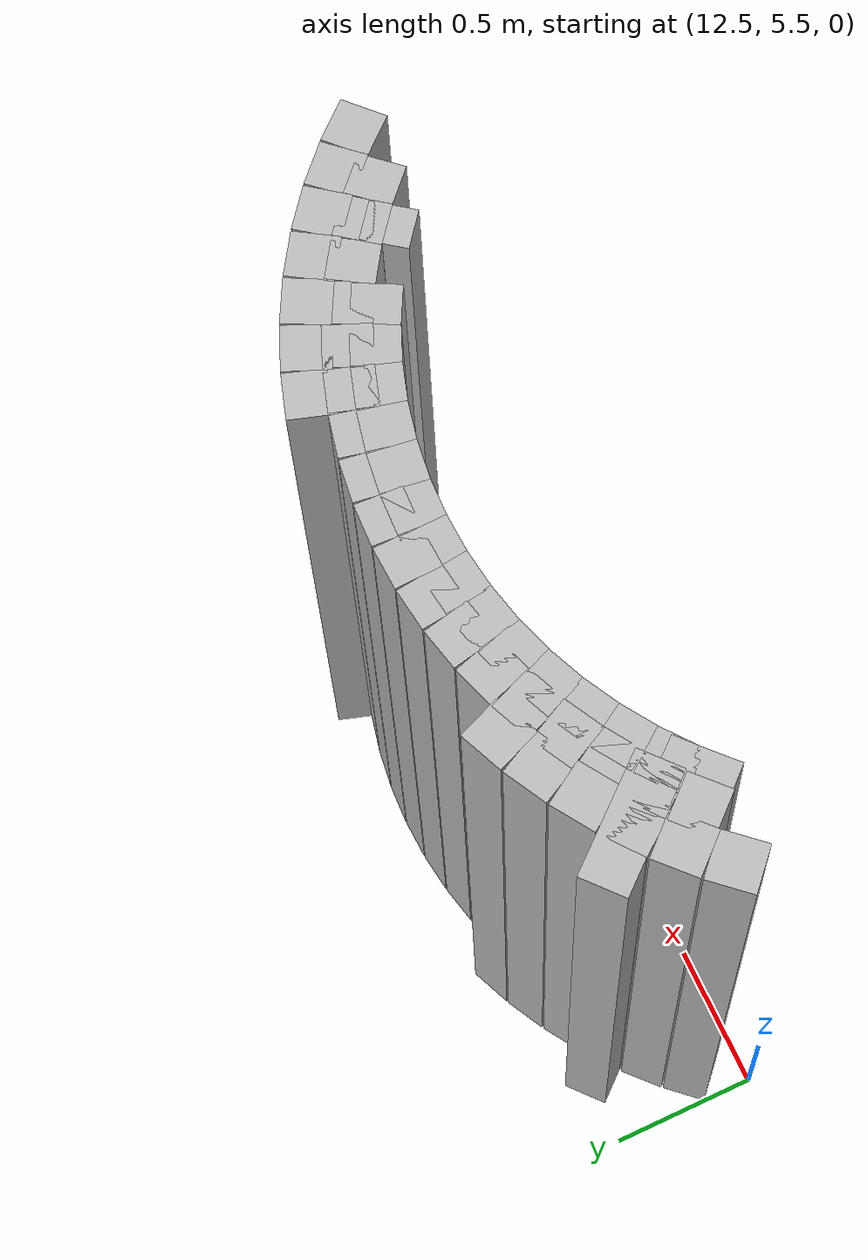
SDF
<sdf version="1.6">
 <model name="sps_1000">
  <static>1</static>
  <allow_auto_disable>0</allow_auto_disable>
  <link name="Wall2316">
   <collision name="collision"><geometry><box><size>0.399907 0.15 2.5</size></box></geometry></collision>
   <visual name="visual">
    <geometry><box><size>0.399907 0.15 2.5</size></box></geometry>
    <transparency>0.0</transparency>
   </visual>
   <pose>12.8293 5.8817 1.25 0 -0 2.28123</pose>
  </link>
  <link name="Wall7681">
   <collision name="collision"><geometry><box><size>0.399907 0.15 2.5</size></box></geometry></collision>
   <visual name="visual">
    <geometry><box><size>0.399907 0.15 2.5</size></box></geometry>
    <transparency>0.0</transparency>
   </visual>
   <pose>12.8293 5.8817 1.25 0 -0 2.28123</pose>
  </link>
  <link name="Wall9812">
   <collision name="collision"><geometry><box><size>0.130818 0.15 2.5</size></box></geometry></collision>
   <visual name="visual">
    <geometry><box><size>0.130818 0.15 2.5</size></box></geometry>
    <transparency>0.0</transparency>
   </visual>
   <pose>14.7736 5.71547 1.25 0 0 -0.654046</pose>
  </link>
  <link name="Wall9868">
   <collision name="collision"><geometry><box><size>0.130943 0.15 2.5</size></box></geometry></collision>
   <visual name="visual">
    <geometry><box><size>0.130943 0.15 2.5</size></box></geometry>
    <transparency>0.0</transparency>
   </visual>
   <pose>12.8487 5.63209 1.25 0 -0 0.740888</pose>
  </link>
  <link name="Wall9869">
   <collision name="collision"><geometry><box><size>0.130818 0.15 2.5</size></box></geometry></collision>
   <visual name="visual">
    <geometry><box><size>0.130818 0.15 2.5</size></box></geometry>
    <transparency>0.0</transparency>
   </visual>
   <pose>12.949 5.71608 1.25 0 -0 0.654046</pose>
  </link>
  <link name="Wall9870">
   <collision name="collision"><geometry><box><size>0.130783 0.15 2.5</size></box></geometry></collision>
   <visual name="visual">
    <geometry><box><size>0.130783 0.15 2.5</size></box></geometry>
    <transparency>0.0</transparency>
   </visual>
   <pose>13.0561 5.79097 1.25 0 -0 0.566514</pose>
  </link>
  <link name="Wall9871">
   <collision name="collision"><geometry><box><size>0.130981 0.15 2.5</size></box></geometry></collision>
   <visual name="visual">
    <geometry><box><size>0.130981 0.15 2.5</size></box></geometry>
    <transparency>0.0</transparency>
   </visual>
   <pose>13.1693 5.85628 1.25 0 -0 0.479486</pose>
  </link>
  <link name="Wall9872">
   <collision name="collision"><geometry><box><size>0.130724 0.15 2.5</size></box></geometry></collision>
   <visual name="visual">
    <geometry><box><size>0.130724 0.15 2.5</size></box></geometry>
    <transparency>0.0</transparency>
   </visual>
   <pose>13.2878 5.91148 1.25 0 -0 0.392385</pose>
  </link>
  <link name="Wall9873">
   <collision name="collision"><geometry><box><size>0.130896 0.15 2.5</size></box></geometry></collision>
   <visual name="visual">
    <geometry><box><size>0.130896 0.15 2.5</size></box></geometry>
    <transparency>0.0</transparency>
   </visual>
   <pose>13.4106 5.95619 1.25 0 -0 0.305972</pose>
  </link>
  <link name="Wall9874">
   <collision name="collision"><geometry><box><size>0.130921 0.15 2.5</size></box></geometry></collision>
   <visual name="visual">
    <geometry><box><size>0.130921 0.15 2.5</size></box></geometry>
    <transparency>0.0</transparency>
   </visual>
   <pose>13.5369 5.9901 1.25 0 -0 0.218517</pose>
  </link>
  <link name="Wall9875">
   <collision name="collision"><geometry><box><size>0.130934 0.15 2.5</size></box></geometry></collision>
   <visual name="visual">
    <geometry><box><size>0.130934 0.15 2.5</size></box></geometry>
    <transparency>0.0</transparency>
   </visual>
   <pose>13.6658 6.0128 1.25 0 -0 0.130426</pose>
  </link>
  <link name="Wall9876">
   <collision name="collision"><geometry><box><size>0.130916 0.15 2.5</size></box></geometry></collision>
   <visual name="visual">
    <geometry><box><size>0.130916 0.15 2.5</size></box></geometry>
    <transparency>0.0</transparency>
   </visual>
   <pose>13.7961 6.02409 1.25 0 -0 0.0424383</pose>
  </link>
  <link name="Wall9877">
   <collision name="collision"><geometry><box><size>0.130683 0.15 2.5</size></box></geometry></collision>
   <visual name="visual">
    <geometry><box><size>0.130683 0.15 2.5</size></box></geometry>
    <transparency>0.0</transparency>
   </visual>
   <pose>13.9267 6.02397 1.25 0 0 -0.0443841</pose>
  </link>
  <link name="Wall9878">
   <collision name="collision"><geometry><box><size>0.130926 0.15 2.5</size></box></geometry></collision>
   <visual name="visual">
    <geometry><box><size>0.130926 0.15 2.5</size></box></geometry>
    <transparency>0.0</transparency>
   </visual>
   <pose>14.0569 6.01259 1.25 0 0 -0.129964</pose>
  </link>
  <link name="Wall9879">
   <collision name="collision"><geometry><box><size>0.130921 0.15 2.5</size></box></geometry></collision>
   <visual name="visual">
    <geometry><box><size>0.130921 0.15 2.5</size></box></geometry>
    <transparency>0.0</transparency>
   </visual>
   <pose>14.1858 5.98991 1.25 0 0 -0.218517</pose>
  </link>
  <link name="Wall9880">
   <collision name="collision"><geometry><box><size>0.130896 0.15 2.5</size></box></geometry></collision>
   <visual name="visual">
    <geometry><box><size>0.130896 0.15 2.5</size></box></geometry>
    <transparency>0.0</transparency>
   </visual>
   <pose>14.3121 5.95601 1.25 0 0 -0.305972</pose>
  </link>
  <link name="Wall9881">
   <collision name="collision"><geometry><box><size>0.130794 0.15 2.5</size></box></geometry></collision>
   <visual name="visual">
    <geometry><box><size>0.130794 0.15 2.5</size></box></geometry>
    <transparency>0.0</transparency>
   </visual>
   <pose>14.4349 5.91121 1.25 0 0 -0.393678</pose>
  </link>
  <link name="Wall9882">
   <collision name="collision"><geometry><box><size>0.130765 0.15 2.5</size></box></geometry></collision>
   <visual name="visual">
    <geometry><box><size>0.130765 0.15 2.5</size></box></geometry>
    <transparency>0.0</transparency>
   </visual>
   <pose>14.5532 5.85591 1.25 0 0 -0.480348</pose>
  </link>
  <link name="Wall15295">
   <collision name="collision"><geometry><box><size>0.137937 0.15 2.5</size></box></geometry></collision>
   <visual name="visual">
    <geometry><box><size>0.137937 0.15 2.5</size></box></geometry>
    <transparency>0.0</transparency>
   </visual>
   <pose>14.8223 5.7791 1.25 0 0 -0.655183</pose>
  </link>
  <link name="Wall15296">
   <collision name="collision"><geometry><box><size>0.13789 0.15 2.5</size></box></geometry></collision>
   <visual name="visual">
    <geometry><box><size>0.13789 0.15 2.5</size></box></geometry>
    <transparency>0.0</transparency>
   </visual>
   <pose>14.9278 5.69047 1.25 0 0 -0.742192</pose>
  </link>
  <link name="Wall15351">
   <collision name="collision"><geometry><box><size>0.137902 0.15 2.5</size></box></geometry></collision>
   <visual name="visual">
    <geometry><box><size>0.137902 0.15 2.5</size></box></geometry>
    <transparency>0.0</transparency>
   </visual>
   <pose>12.7948 5.69118 1.25 0 -0 0.740316</pose>
  </link>
  <link name="Wall15352">
   <collision name="collision"><geometry><box><size>0.137899 0.15 2.5</size></box></geometry></collision>
   <visual name="visual">
    <geometry><box><size>0.137899 0.15 2.5</size></box></geometry>
    <transparency>0.0</transparency>
   </visual>
   <pose>12.9004 5.77968 1.25 0 -0 0.654832</pose>
  </link>
  <link name="Wall15353">
   <collision name="collision"><geometry><box><size>0.137791 0.15 2.5</size></box></geometry></collision>
   <visual name="visual">
    <geometry><box><size>0.137791 0.15 2.5</size></box></geometry>
    <transparency>0.0</transparency>
   </visual>
   <pose>13.0131 5.85869 1.25 0 -0 0.567239</pose>
  </link>
  <link name="Wall15354">
   <collision name="collision"><geometry><box><size>0.137753 0.15 2.5</size></box></geometry></collision>
   <visual name="visual">
    <geometry><box><size>0.137753 0.15 2.5</size></box></geometry>
    <transparency>0.0</transparency>
   </visual>
   <pose>13.1323 5.9275 1.25 0 -0 0.479897</pose>
  </link>
  <link name="Wall15355">
   <collision name="collision"><geometry><box><size>0.137874 0.15 2.5</size></box></geometry></collision>
   <visual name="visual">
    <geometry><box><size>0.137874 0.15 2.5</size></box></geometry>
    <transparency>0.0</transparency>
   </visual>
   <pose>13.2572 5.98561 1.25 0 -0 0.391522</pose>
  </link>
  <link name="Wall15356">
   <collision name="collision"><geometry><box><size>0.138 0.15 2.5</size></box></geometry></collision>
   <visual name="visual">
    <geometry><box><size>0.138 0.15 2.5</size></box></geometry>
    <transparency>0.0</transparency>
   </visual>
   <pose>13.3867 6.0327 1.25 0 -0 0.305945</pose>
  </link>
  <link name="Wall15357">
   <collision name="collision"><geometry><box><size>0.137839 0.15 2.5</size></box></geometry></collision>
   <visual name="visual">
    <geometry><box><size>0.137839 0.15 2.5</size></box></geometry>
    <transparency>0.0</transparency>
   </visual>
   <pose>13.5198 6.06837 1.25 0 -0 0.217804</pose>
  </link>
  <link name="Wall15358">
   <collision name="collision"><geometry><box><size>0.137754 0.15 2.5</size></box></geometry></collision>
   <visual name="visual">
    <geometry><box><size>0.137754 0.15 2.5</size></box></geometry>
    <transparency>0.0</transparency>
   </visual>
   <pose>13.6554 6.09218 1.25 0 -0 0.129741</pose>
  </link>
  <link name="Wall15359">
   <collision name="collision"><geometry><box><size>0.137947 0.15 2.5</size></box></geometry></collision>
   <visual name="visual">
    <geometry><box><size>0.137947 0.15 2.5</size></box></geometry>
    <transparency>0.0</transparency>
   </visual>
   <pose>13.7926 6.10408 1.25 0 -0 0.043374</pose>
  </link>
  <link name="Wall15360">
   <collision name="collision"><geometry><box><size>0.137886 0.15 2.5</size></box></geometry></collision>
   <visual name="visual">
    <geometry><box><size>0.137886 0.15 2.5</size></box></geometry>
    <transparency>0.0</transparency>
   </visual>
   <pose>13.9304 6.10408 1.25 0 0 -0.0433932</pose>
  </link>
  <link name="Wall15361">
   <collision name="collision"><geometry><box><size>0.137778 0.15 2.5</size></box></geometry></collision>
   <visual name="visual">
    <geometry><box><size>0.137778 0.15 2.5</size></box></geometry>
    <transparency>0.0</transparency>
   </visual>
   <pose>14.0675 6.09209 1.25 0 0 -0.131059</pose>
  </link>
  <link name="Wall15362">
   <collision name="collision"><geometry><box><size>0.137938 0.15 2.5</size></box></geometry></collision>
   <visual name="visual">
    <geometry><box><size>0.137938 0.15 2.5</size></box></geometry>
    <transparency>0.0</transparency>
   </visual>
   <pose>14.2031 6.0681 1.25 0 0 -0.219005</pose>
  </link>
  <link name="Wall15363">
   <collision name="collision"><geometry><box><size>0.137789 0.15 2.5</size></box></geometry></collision>
   <visual name="visual">
    <geometry><box><size>0.137789 0.15 2.5</size></box></geometry>
    <transparency>0.0</transparency>
   </visual>
   <pose>14.3362 6.03239 1.25 0 0 -0.305501</pose>
  </link>
  <link name="Wall15364">
   <collision name="collision"><geometry><box><size>0.137888 0.15 2.5</size></box></geometry></collision>
   <visual name="visual">
    <geometry><box><size>0.137888 0.15 2.5</size></box></geometry>
    <transparency>0.0</transparency>
   </visual>
   <pose>14.4656 5.98527 1.25 0 0 -0.392918</pose>
  </link>
  <link name="Wall15365">
   <collision name="collision"><geometry><box><size>0.137753 0.15 2.5</size></box></geometry></collision>
   <visual name="visual">
    <geometry><box><size>0.137753 0.15 2.5</size></box></geometry>
    <transparency>0.0</transparency>
   </visual>
   <pose>14.5904 5.92708 1.25 0 0 -0.479897</pose>
  </link>
  <link name="Wall15366">
   <collision name="collision"><geometry><box><size>0.137856 0.15 2.5</size></box></geometry></collision>
   <visual name="visual">
    <geometry><box><size>0.137856 0.15 2.5</size></box></geometry>
    <transparency>0.0</transparency>
   </visual>
   <pose>14.7096 5.8582 1.25 0 0 -0.567986</pose>
  </link>
  <link name="Wall21898">
   <collision name="collision"><geometry><box><size>0.148189 0.15 2.5</size></box></geometry></collision>
   <visual name="visual">
    <geometry><box><size>0.148189 0.15 2.5</size></box></geometry>
    <transparency>0.0</transparency>
   </visual>
   <pose>14.8954 5.87419 1.25 0 0 -0.653963</pose>
  </link>
  <link name="Wall21899">
   <collision name="collision"><geometry><box><size>0.148336 0.15 2.5</size></box></geometry></collision>
   <visual name="visual">
    <geometry><box><size>0.148336 0.15 2.5</size></box></geometry>
    <transparency>0.0</transparency>
   </visual>
   <pose>15.0088 5.77891 1.25 0 0 -0.743489</pose>
  </link>
  <link name="Wall21900">
   <collision name="collision"><geometry><box><size>0.148392 0.15 2.5</size></box></geometry></collision>
   <visual name="visual">
    <geometry><box><size>0.148392 0.15 2.5</size></box></geometry>
    <transparency>0.0</transparency>
   </visual>
   <pose>15.1135 5.67399 1.25 0 0 -0.829329</pose>
  </link>
  <link name="Wall21953">
   <collision name="collision"><geometry><box><size>0.148392 0.15 2.5</size></box></geometry></collision>
   <visual name="visual">
    <geometry><box><size>0.148392 0.15 2.5</size></box></geometry>
    <transparency>0.0</transparency>
   </visual>
   <pose>12.609 5.67479 1.25 0 -0 0.829329</pose>
  </link>
  <link name="Wall21954">
   <collision name="collision"><geometry><box><size>0.148306 0.15 2.5</size></box></geometry></collision>
   <visual name="visual">
    <geometry><box><size>0.148306 0.15 2.5</size></box></geometry>
    <transparency>0.0</transparency>
   </visual>
   <pose>12.7138 5.77959 1.25 0 -0 0.741442</pose>
  </link>
  <link name="Wall21955">
   <collision name="collision"><geometry><box><size>0.148372 0.15 2.5</size></box></geometry></collision>
   <visual name="visual">
    <geometry><box><size>0.148372 0.15 2.5</size></box></geometry>
    <transparency>0.0</transparency>
   </visual>
   <pose>12.8274 5.87477 1.25 0 -0 0.653539</pose>
  </link>
  <link name="Wall21956">
   <collision name="collision"><geometry><box><size>0.148188 0.15 2.5</size></box></geometry></collision>
   <visual name="visual">
    <geometry><box><size>0.148188 0.15 2.5</size></box></geometry>
    <transparency>0.0</transparency>
   </visual>
   <pose>12.9488 5.95967 1.25 0 -0 0.566982</pose>
  </link>
  <link name="Wall21957">
   <collision name="collision"><geometry><box><size>0.148401 0.15 2.5</size></box></geometry></collision>
   <visual name="visual">
    <geometry><box><size>0.148401 0.15 2.5</size></box></geometry>
    <transparency>0.0</transparency>
   </visual>
   <pose>13.077 6.03377 1.25 0 -0 0.48057</pose>
  </link>
  <link name="Wall21958">
   <collision name="collision"><geometry><box><size>0.148269 0.15 2.5</size></box></geometry></collision>
   <visual name="visual">
    <geometry><box><size>0.148269 0.15 2.5</size></box></geometry>
    <transparency>0.0</transparency>
   </visual>
   <pose>13.2114 6.09639 1.25 0 -0 0.391973</pose>
  </link>
  <link name="Wall21966">
   <collision name="collision"><geometry><box><size>0.148287 0.15 2.5</size></box></geometry></collision>
   <visual name="visual">
    <geometry><box><size>0.148287 0.15 2.5</size></box></geometry>
    <transparency>0.0</transparency>
   </visual>
   <pose>14.3722 6.14668 1.25 0 0 -0.306912</pose>
  </link>
  <link name="Wall21967">
   <collision name="collision"><geometry><box><size>0.148415 0.15 2.5</size></box></geometry></collision>
   <visual name="visual">
    <geometry><box><size>0.148415 0.15 2.5</size></box></geometry>
    <transparency>0.0</transparency>
   </visual>
   <pose>14.5114 6.09599 1.25 0 0 -0.391122</pose>
  </link>
  <link name="Wall21968">
   <collision name="collision"><geometry><box><size>0.148239 0.15 2.5</size></box></geometry></collision>
   <visual name="visual">
    <geometry><box><size>0.148239 0.15 2.5</size></box></geometry>
    <transparency>0.0</transparency>
   </visual>
   <pose>14.6457 6.0334 1.25 0 0 -0.481141</pose>
  </link>
  <link name="Wall21969">
   <collision name="collision"><geometry><box><size>0.148473 0.15 2.5</size></box></geometry></collision>
   <visual name="visual">
    <geometry><box><size>0.148473 0.15 2.5</size></box></geometry>
    <transparency>0.0</transparency>
   </visual>
   <pose>14.774 5.95918 1.25 0 0 -0.567707</pose>
  </link>
  <link name="Wall37838">
   <collision name="collision"><geometry><box><size>0.100581 0.15 2.5</size></box></geometry></collision>
   <visual name="visual">
    <geometry><box><size>0.100581 0.15 2.5</size></box></geometry>
    <transparency>0.0</transparency>
   </visual>
   <pose>12.9216 5.69731 1.25 0 -0 0.710667</pose>
  </link>
 </model>
</sdf>
